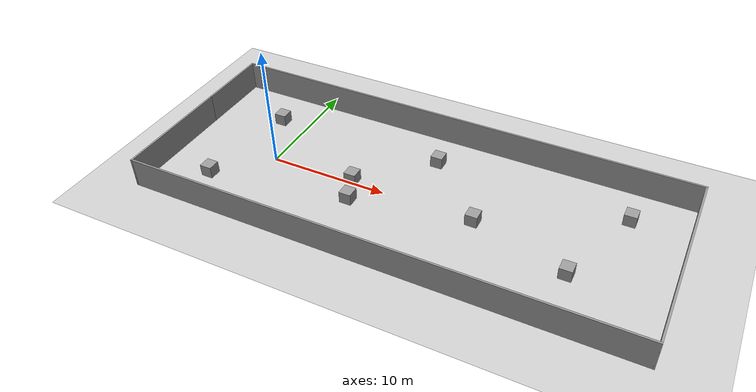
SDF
<sdf version="1.7">
 <world name="default">
  <light name="sun" type="directional">
   <pose>0 0 10 0 -0 0</pose>
   <diffuse>0.8 0.8 0.8 1</diffuse>
   <specular>0.2 0.2 0.2 1</specular>
   <attenuation>
    <range>1000</range>
    <constant>0.9</constant>
    <linear>0.01</linear>
    <quadratic>0.001</quadratic>
   </attenuation>
   <direction>-0.5 0.1 -0.9</direction>
   <spot><inner_angle>0</inner_angle><outer_angle>0</outer_angle><falloff>0</falloff></spot>
  </light>
  <model name="ground_plane">
   <static>1</static>
   <link name="link">
    <collision name="collision">
     <geometry><plane><normal>0 0 1</normal><size>100 100</size></plane></geometry>
     <surface>
      <contact><collide_bitmask>65535</collide_bitmask></contact>
      <friction><ode><mu>100</mu><mu2>50</mu2></ode></friction>
     </surface>
    </collision>
    <visual name="visual">
     <cast_shadows>0</cast_shadows>
     <geometry><plane><normal>0 0 1</normal><size>100 100</size></plane></geometry>
     <material>
      <script><uri>file://media/materials/scripts/gazebo.material</uri><name>Gazebo/Grey</name></script>
     </material>
    </visual>
   </link>
  </model>
  <gravity>0 0 -9.8</gravity>
  <magnetic_field>6e-06 2.3e-05 -4.2e-05</magnetic_field>
  <atmosphere type="adiabatic"/>
  <physics type="ode">
   <max_step_size>0.001</max_step_size>
   <real_time_factor>1</real_time_factor>
   <real_time_update_rate>1000</real_time_update_rate>
  </physics>
  <scene><ambient>0.4 0.4 0.4 1</ambient><background>0.7 0.7 0.7 1</background><shadows>1</shadows></scene>
  <spherical_coordinates>
   <surface_model>EARTH_WGS84</surface_model>
   <latitude_deg>0</latitude_deg>
   <longitude_deg>0</longitude_deg>
   <elevation>0</elevation>
   <heading_deg>0</heading_deg>
  </spherical_coordinates>
  <model name="xzk3">
   <pose>12.3968 0.528473 0 0 -0 0</pose>
   <link name="Wall_0">
    <collision name="Wall_0_Collision">
     <geometry><box><size>10 0.15 2.5</size></box></geometry>
     <pose>0 0 1.25 0 -0 0</pose>
    </collision>
    <visual name="Wall_0_Visual">
     <pose>0 0 1.25 0 -0 0</pose>
     <geometry><box><size>10 0.15 2.5</size></box></geometry>
     <material>
      <script><uri>file://media/materials/scripts/gazebo.material</uri><name>Gazebo/Grey</name></script>
      <ambient>1 1 1 1</ambient>
     </material>
     <meta><layer>0</layer></meta>
    </visual>
    <pose>-20.425 -3.125 0 0 -0 -1.5708</pose>
   </link>
   <link name="Wall_1">
    <collision name="Wall_1_Collision">
     <geometry><box><size>41 0.15 2.5</size></box></geometry>
     <pose>0 0 1.25 0 -0 0</pose>
    </collision>
    <visual name="Wall_1_Visual">
     <pose>0 0 1.25 0 -0 0</pose>
     <geometry><box><size>41 0.15 2.5</size></box></geometry>
     <material>
      <script><uri>file://media/materials/scripts/gazebo.material</uri><name>Gazebo/Grey</name></script>
      <ambient>1 1 1 1</ambient>
     </material>
     <meta><layer>0</layer></meta>
    </visual>
    <pose>1e-06 -8.05 0 0 -0 0</pose>
   </link>
   <link name="Wall_2">
    <collision name="Wall_2_Collision">
     <geometry><box><size>16.25 0.15 2.5</size></box></geometry>
     <pose>0 0 1.25 0 -0 0</pose>
    </collision>
    <visual name="Wall_2_Visual">
     <pose>0 0 1.25 0 -0 0</pose>
     <geometry><box><size>16.25 0.15 2.5</size></box></geometry>
     <material>
      <script><uri>file://media/materials/scripts/gazebo.material</uri><name>Gazebo/Grey</name></script>
      <ambient>1 1 1 1</ambient>
     </material>
     <meta><layer>0</layer></meta>
    </visual>
    <pose>20.425 -0 0 0 -0 1.5708</pose>
   </link>
   <link name="Wall_3">
    <collision name="Wall_3_Collision">
     <geometry><box><size>41 0.15 2.5</size></box></geometry>
     <pose>0 0 1.25 0 -0 0</pose>
    </collision>
    <visual name="Wall_3_Visual">
     <pose>0 0 1.25 0 -0 0</pose>
     <geometry><box><size>41 0.15 2.5</size></box></geometry>
     <material>
      <script><uri>file://media/materials/scripts/gazebo.material</uri><name>Gazebo/Grey</name></script>
      <ambient>1 1 1 1</ambient>
     </material>
     <meta><layer>0</layer></meta>
    </visual>
    <pose>1e-06 8.05 0 0 -0 3.14159</pose>
   </link>
   <link name="Wall_4">
    <collision name="Wall_4_Collision">
     <geometry><box><size>6.4 0.15 2.5</size></box></geometry>
     <pose>0 0 1.25 0 -0 0</pose>
    </collision>
    <visual name="Wall_4_Visual">
     <pose>0 0 1.25 0 -0 0</pose>
     <geometry><box><size>6.4 0.15 2.5</size></box></geometry>
     <material>
      <script><uri>file://media/materials/scripts/gazebo.material</uri><name>Gazebo/Grey</name></script>
      <ambient>1 1 1 1</ambient>
     </material>
     <meta><layer>0</layer></meta>
    </visual>
    <pose>-20.425 4.925 0 0 -0 -1.5708</pose>
   </link>
   <static>1</static>
  </model>
  <model name="unit_box">
   <pose>-3.74778 -3.84644 0.5 0 -0 0</pose>
   <link name="link">
    <inertial>
     <mass>1</mass>
     <inertia>
      <ixx>0.166667</ixx>
      <ixy>0</ixy>
      <ixz>0</ixz>
      <iyy>0.166667</iyy>
      <iyz>0</iyz>
      <izz>0.166667</izz>
     </inertia>
    </inertial>
    <collision name="collision"><geometry><box><size>1 1 1</size></box></geometry></collision>
    <visual name="visual">
     <geometry><box><size>1 1 1</size></box></geometry>
     <material>
      <script><name>Gazebo/Grey</name><uri>file://media/materials/scripts/gazebo.material</uri></script>
     </material>
    </visual>
   </link>
  </model>
  <model name="unit_box_0">
   <pose>-2.42411 4.86099 0.5 0 -0 0</pose>
   <link name="link">
    <inertial>
     <mass>1</mass>
     <inertia>
      <ixx>0.166667</ixx>
      <ixy>0</ixy>
      <ixz>0</ixz>
      <iyy>0.166667</iyy>
      <iyz>0</iyz>
      <izz>0.166667</izz>
     </inertia>
    </inertial>
    <collision name="collision"><geometry><box><size>1 1 1</size></box></geometry></collision>
    <visual name="visual">
     <geometry><box><size>1 1 1</size></box></geometry>
     <material>
      <script><name>Gazebo/Grey</name><uri>file://media/materials/scripts/gazebo.material</uri></script>
     </material>
    </visual>
   </link>
  </model>
  <model name="unit_box_1">
   <pose>7.09968 0.315107 0.5 0 -0 0</pose>
   <link name="link">
    <inertial>
     <mass>1</mass>
     <inertia>
      <ixx>0.166667</ixx>
      <ixy>0</ixy>
      <ixz>0</ixz>
      <iyy>0.166667</iyy>
      <iyz>0</iyz>
      <izz>0.166667</izz>
     </inertia>
    </inertial>
    <collision name="collision"><geometry><box><size>1 1 1</size></box></geometry></collision>
    <visual name="visual">
     <geometry><box><size>1 1 1</size></box></geometry>
     <material>
      <script><name>Gazebo/Grey</name><uri>file://media/materials/scripts/gazebo.material</uri></script>
     </material>
    </visual>
   </link>
  </model>
  <model name="unit_box_2">
   <pose>12.4118 5.26691 0.5 0 -0 0</pose>
   <link name="link">
    <inertial>
     <mass>1</mass>
     <inertia>
      <ixx>0.166667</ixx>
      <ixy>0</ixy>
      <ixz>0</ixz>
      <iyy>0.166667</iyy>
      <iyz>0</iyz>
      <izz>0.166667</izz>
     </inertia>
    </inertial>
    <collision name="collision"><geometry><box><size>1 1 1</size></box></geometry></collision>
    <visual name="visual">
     <geometry><box><size>1 1 1</size></box></geometry>
     <material>
      <script><name>Gazebo/Grey</name><uri>file://media/materials/scripts/gazebo.material</uri></script>
     </material>
    </visual>
   </link>
  </model>
  <model name="unit_box_3">
   <pose>7.94867 -1.90104 0.5 0 -0 0</pose>
   <link name="link">
    <inertial>
     <mass>1</mass>
     <inertia>
      <ixx>0.166667</ixx>
      <ixy>0</ixy>
      <ixz>0</ixz>
      <iyy>0.166667</iyy>
      <iyz>0</iyz>
      <izz>0.166667</izz>
     </inertia>
    </inertial>
    <collision name="collision"><geometry><box><size>1 1 1</size></box></geometry></collision>
    <visual name="visual">
     <geometry><box><size>1 1 1</size></box></geometry>
     <material>
      <script><name>Gazebo/Grey</name><uri>file://media/materials/scripts/gazebo.material</uri></script>
     </material>
    </visual>
   </link>
  </model>
  <model name="unit_box_4">
   <pose>17.6644 -0.054816 0.5 0 -0 0</pose>
   <link name="link">
    <inertial>
     <mass>1</mass>
     <inertia>
      <ixx>0.166667</ixx>
      <ixy>0</ixy>
      <ixz>0</ixz>
      <iyy>0.166667</iyy>
      <iyz>0</iyz>
      <izz>0.166667</izz>
     </inertia>
    </inertial>
    <collision name="collision"><geometry><box><size>1 1 1</size></box></geometry></collision>
    <visual name="visual">
     <geometry><box><size>1 1 1</size></box></geometry>
     <material>
      <script><name>Gazebo/Grey</name><uri>file://media/materials/scripts/gazebo.material</uri></script>
     </material>
    </visual>
   </link>
  </model>
  <model name="unit_box_5">
   <pose>28.3286 5.10596 0.5 0 -0 0</pose>
   <link name="link">
    <inertial>
     <mass>1</mass>
     <inertia>
      <ixx>0.166667</ixx>
      <ixy>0</ixy>
      <ixz>0</ixz>
      <iyy>0.166667</iyy>
      <iyz>0</iyz>
      <izz>0.166667</izz>
     </inertia>
    </inertial>
    <collision name="collision"><geometry><box><size>1 1 1</size></box></geometry></collision>
    <visual name="visual">
     <geometry><box><size>1 1 1</size></box></geometry>
     <material>
      <script><name>Gazebo/Grey</name><uri>file://media/materials/scripts/gazebo.material</uri></script>
     </material>
    </visual>
   </link>
  </model>
  <model name="unit_box_6">
   <pose>25.6211 -2.29549 0.5 0 -0 0</pose>
   <link name="link">
    <inertial>
     <mass>1</mass>
     <inertia>
      <ixx>0.166667</ixx>
      <ixy>0</ixy>
      <ixz>0</ixz>
      <iyy>0.166667</iyy>
      <iyz>0</iyz>
      <izz>0.166667</izz>
     </inertia>
    </inertial>
    <collision name="collision"><geometry><box><size>1 1 1</size></box></geometry></collision>
    <visual name="visual">
     <geometry><box><size>1 1 1</size></box></geometry>
     <material>
      <script><name>Gazebo/Grey</name><uri>file://media/materials/scripts/gazebo.material</uri></script>
     </material>
    </visual>
   </link>
  </model>
 </world>
</sdf>
